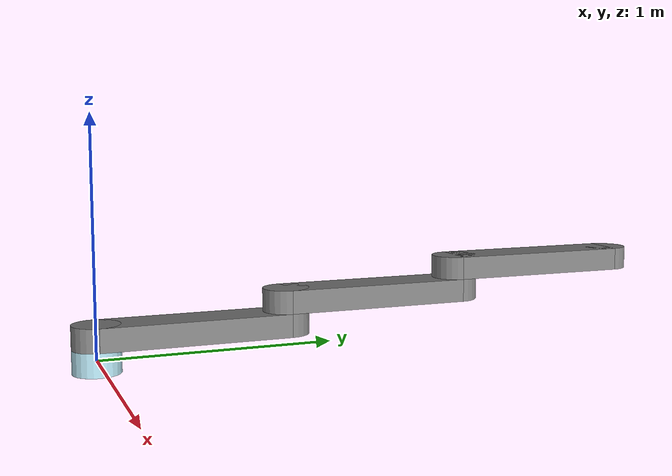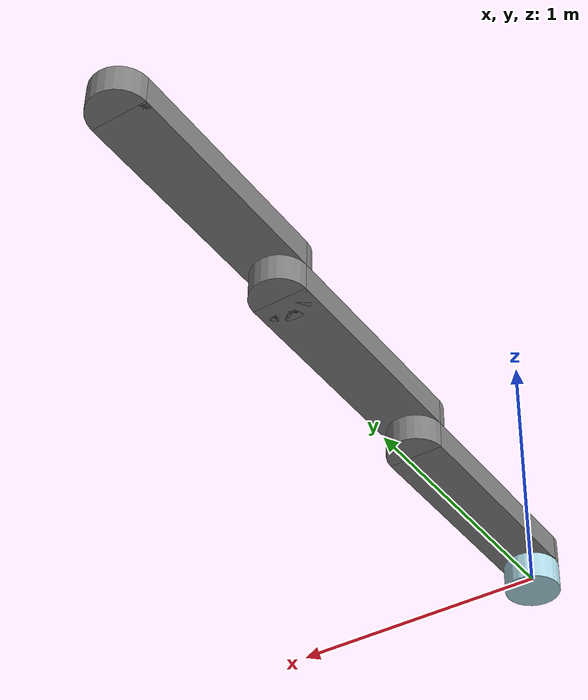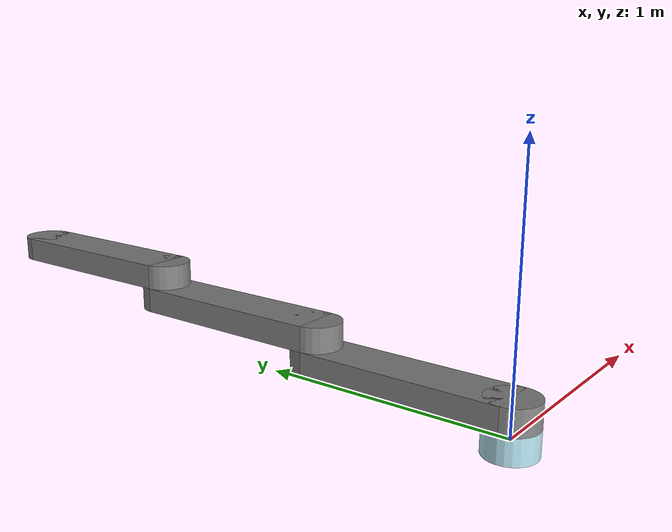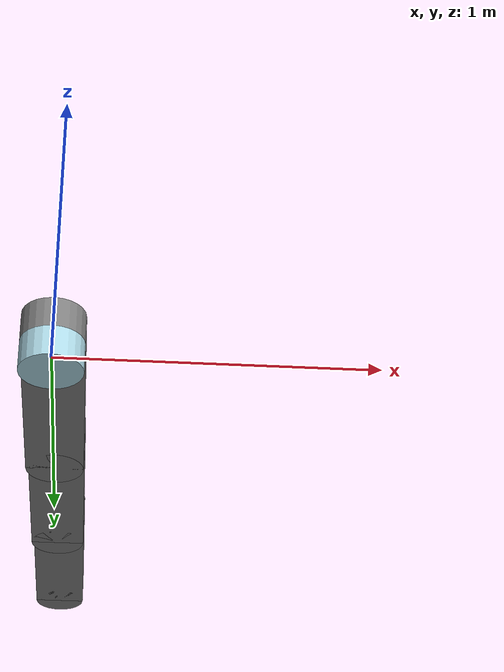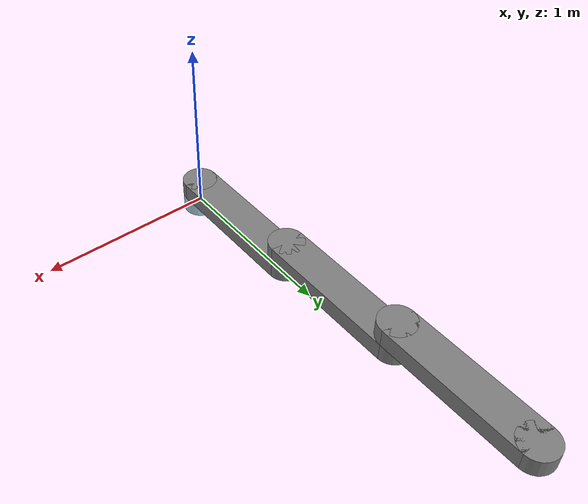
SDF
<?xml version="1.0"?>
<sdf version="1.7">
  <model name="3dofPlanar">
    <!-- Manipulatator base -->
    <link name="3dofPlanarBase">
      <pose>0 0 0 0 0 0</pose>
      <visual name="3dofPlanarBaseVisual">
        <geometry>
          <cylinder>
            <radius>0.1</radius>
            <length>0.1</length>
          </cylinder>
        </geometry>
        <material>
          <ambient>0.68 0.85 0.9 1</ambient>
          <diffuse>0.68 0.85 0.9 1</diffuse>
          <specular>0.68 0.85 0.9 1</specular>
          <emissive>0.68 0.85 0.9 1</emissive>
        </material>
      </visual>
      <collision name="3dofPlanarBaseCollision">
        <pose>0 0 0 0 0 0</pose>
        <geometry>
          <cylinder>
            <radius>0.1</radius>
            <length>0.1</length>
          </cylinder>
        </geometry>
      </collision>
    </link>

    <!-- First link  -->
    <link name="3dofPlanarLink1">
      <pose>0 0 0.1 0 0 0</pose>
      <visual name="3dofPlanarLink1Visual1">
        <pose>0 0 0 0 0 0</pose>
        <geometry>
          <cylinder>
            <radius>0.1</radius>
            <length>0.1</length>
          </cylinder>
        </geometry>
        <material>
          <ambient>0.5 0.5 0.5 1</ambient>
          <diffuse>0.5 0.5 0.5 1</diffuse>
          <specular>0.5 0.5 0.5 1</specular>
          <emissive>0.5 0.5 0.5 1</emissive>
        </material>
      </visual>
      <visual name="3dofPlanarLink1Visual2">
        <pose>0 0.4 0 0 0 0</pose>
        <geometry>
          <box>
            <size>0.2 0.8 0.1</size>
          </box>
        </geometry>
        <material>
          <ambient>0.5 0.5 0.5 1</ambient>
          <diffuse>0.5 0.5 0.5 1</diffuse>
          <specular>0.5 0.5 0.5 1</specular>
          <emissive>0.5 0.5 0.5 1</emissive>
        </material>
      </visual>
      <visual name="3dofPlanarLink1Visual3">
        <pose>0 0.8 0 0 0 0</pose>
        <geometry>
          <cylinder>
            <radius>0.1</radius>
            <length>0.1</length>
          </cylinder>
        </geometry>
        <material>
          <ambient>0.5 0.5 0.5 1</ambient>
          <diffuse>0.5 0.5 0.5 1</diffuse>
          <specular>0.5 0.5 0.5 1</specular>
          <emissive>0.5 0.5 0.5 1</emissive>
        </material>
      </visual>
      <collision name="3dofPlanarLink1Collision1">
        <pose>0 0 0 0 0 0</pose>
        <geometry>
          <cylinder>
            <radius>0.1</radius>
            <length>0.1</length>
          </cylinder>
        </geometry>
      </collision>
      <collision name="3dofPlanarLink1Collision2">
        <pose>0 0.4 0 0 0 0</pose>
        <geometry>
          <box>
            <size>0.2 0.8 0.1</size>
          </box>
        </geometry>
      </collision>
      <collision name="3dofPlanarLink1Collision3">
        <pose>0 0.8 0 0 0 0</pose>
        <geometry>
          <cylinder>
            <radius>0.1</radius>
            <length>0.1</length>
          </cylinder>
        </geometry>
      </collision>
    </link>

    <!-- First joint  -->
    <joint name="3dofPlanarJoint1" type="revolute">
      <parent>3dofPlanarBase</parent>
      <child>3dofPlanarLink1</child>
      <axis>
        <xyz>0 0 1</xyz>
        <limit>
          <lower>-3.14159</lower>
          <upper>3.14159</upper>
        </limit>
      </axis>
    </joint>

    <!-- Second link  -->
    <link name="3dofPlanarLink2">
      <pose>0 0.8 0.2 0 0 0</pose>
      <visual name="3dofPlanarLink2Visual1">
        <pose>0 0 0 0 0 0</pose>
        <geometry>
          <cylinder>
            <radius>0.1</radius>
            <length>0.1</length>
          </cylinder>
        </geometry>
        <material>
          <ambient>0.5 0.5 0.5 1</ambient>
          <diffuse>0.5 0.5 0.5 1</diffuse>
          <specular>0.5 0.5 0.5 1</specular>
          <emissive>0.5 0.5 0.5 1</emissive>
        </material>
      </visual>
      <visual name="3dofPlanarLink2Visual2">
        <pose>0 0.4 0 0 0 0</pose>
        <geometry>
          <box>
            <size>0.2 0.8 0.1</size>
          </box>
        </geometry>
        <material>
          <ambient>0.5 0.5 0.5 1</ambient>
          <diffuse>0.5 0.5 0.5 1</diffuse>
          <specular>0.5 0.5 0.5 1</specular>
          <emissive>0.5 0.5 0.5 1</emissive>
        </material>
      </visual>
      <visual name="3dofPlanarLink2Visual3">
        <pose>0 0.8 0 0 0 0</pose>
        <geometry>
          <cylinder>
            <radius>0.1</radius>
            <length>0.1</length>
          </cylinder>
        </geometry>
        <material>
          <ambient>0.5 0.5 0.5 1</ambient>
          <diffuse>0.5 0.5 0.5 1</diffuse>
          <specular>0.5 0.5 0.5 1</specular>
          <emissive>0.5 0.5 0.5 1</emissive>
        </material>
      </visual>
      <collision name="3dofPlanarLink2Collision1">
        <pose>0 0 0 0 0 0</pose>
        <geometry>
          <cylinder>
            <radius>0.1</radius>
            <length>0.1</length>
          </cylinder>
        </geometry>
      </collision>
      <collision name="3dofPlanarLink2Collision2">
        <pose>0 0.4 0 0 0 0</pose>
        <geometry>
          <box>
            <size>0.2 0.8 0.1</size>
          </box>
        </geometry>
      </collision>
      <collision name="3dofPlanarLink2Collision3">
        <pose>0 0.8 0 0 0 0</pose>
        <geometry>
          <cylinder>
            <radius>0.1</radius>
            <length>0.1</length>
          </cylinder>
        </geometry>
      </collision>
    </link>

    <!-- Second joint  -->
    <joint name="3dofPlanarJoint2" type="revolute">
      <parent>3dofPlanarLink1</parent>
      <child>3dofPlanarLink2</child>
      <axis>
        <xyz>0 0 1</xyz>
        <limit>
          <lower>-3.14159</lower>
          <upper>3.14159</upper>
        </limit>
      </axis>
    </joint>

   <!-- Third link  -->
    <link name="3dofPlanarLink3">
      <pose>0 1.6 0.3 0 0 0</pose>
      <visual name="3dofPlanarLink3Visual1">
        <pose>0 0 0 0 0 0</pose>
        <geometry>
          <cylinder>
            <radius>0.1</radius>
            <length>0.1</length>
          </cylinder>
        </geometry>
        <material>
          <ambient>0.5 0.5 0.5 1</ambient>
          <diffuse>0.5 0.5 0.5 1</diffuse>
          <specular>0.5 0.5 0.5 1</specular>
          <emissive>0.5 0.5 0.5 1</emissive>
        </material>
      </visual>
      <visual name="3dofPlanarLink3Visual2">
        <pose>0 0.4 0 0 0 0</pose>
        <geometry>
          <box>
            <size>0.2 0.8 0.1</size>
          </box>
        </geometry>
        <material>
          <ambient>0.5 0.5 0.5 1</ambient>
          <diffuse>0.5 0.5 0.5 1</diffuse>
          <specular>0.5 0.5 0.5 1</specular>
          <emissive>0.5 0.5 0.5 1</emissive>
        </material>
      </visual>
      <visual name="3dofPlanarLink3Visual3">
        <pose>0 0.8 0 0 0 0</pose>
        <geometry>
          <cylinder>
            <radius>0.1</radius>
            <length>0.1</length>
          </cylinder>
        </geometry>
        <material>
          <ambient>0.5 0.5 0.5 1</ambient>
          <diffuse>0.5 0.5 0.5 1</diffuse>
          <specular>0.5 0.5 0.5 1</specular>
          <emissive>0.5 0.5 0.5 1</emissive>
        </material>
      </visual>
      <collision name="3dofPlanarLink3Collision1">
        <pose>0 0 0 0 0 0</pose>
        <geometry>
          <cylinder>
            <radius>0.1</radius>
            <length>0.1</length>
          </cylinder>
        </geometry>
      </collision>
      <collision name="3dofPlanarLink3Collision2">
        <pose>0 0.4 0 0 0 0</pose>
        <geometry>
          <box>
            <size>0.2 0.8 0.1</size>
          </box>
        </geometry>
      </collision>
      <collision name="3dofPlanarLink3Collision3">
        <pose>0 0.8 0 0 0 0</pose>
        <geometry>
          <cylinder>
            <radius>0.1</radius>
            <length>0.1</length>
          </cylinder>
        </geometry>
      </collision>
    </link>

    <!-- Third joint  -->
    <joint name="3dofPlanarJoint3" type="revolute">
      <parent>3dofPlanarLink2</parent>
      <child>3dofPlanarLink3</child>
      <axis>
        <xyz>0 0 1</xyz>
        <limit>
          <lower>-3.14159</lower>
          <upper>3.14159</upper>
        </limit>
      </axis>
    </joint>

    <!-- Manipulatator end effector -->
    <link name="3dofPlanarEndEffector">
      <pose>0 2.4 0.3 0 0 0</pose>
    </link>

    <!-- End effector joint  -->
    <joint name="3dofPlanarJointEndEffector" type="fixed">
      <parent>3dofPlanarLink3</parent>
      <child>3dofPlanarEndEffector</child>
    </joint>
  </model>
</sdf>
